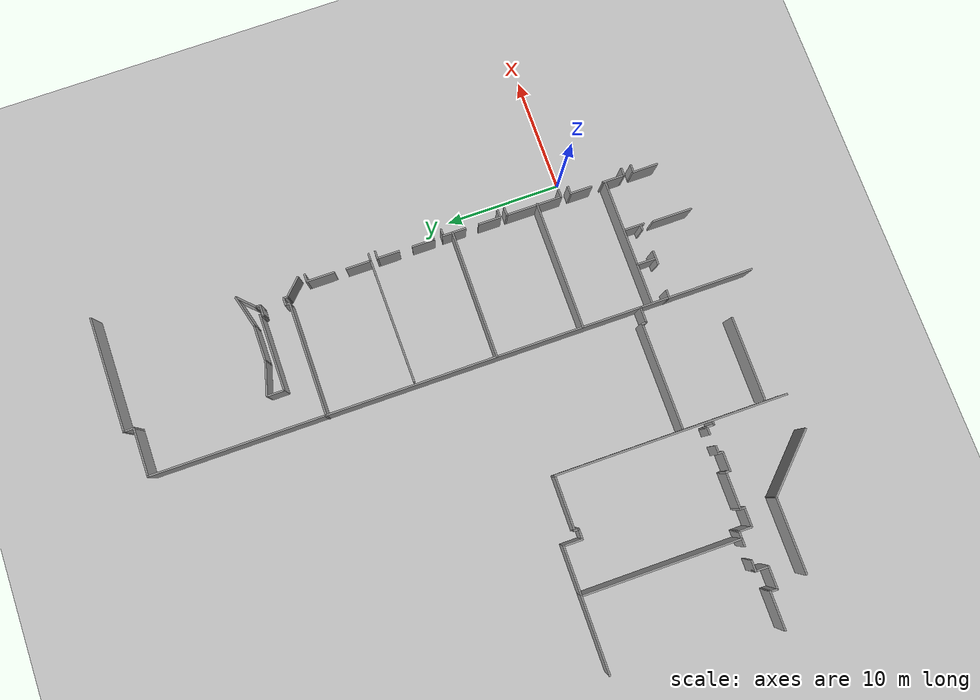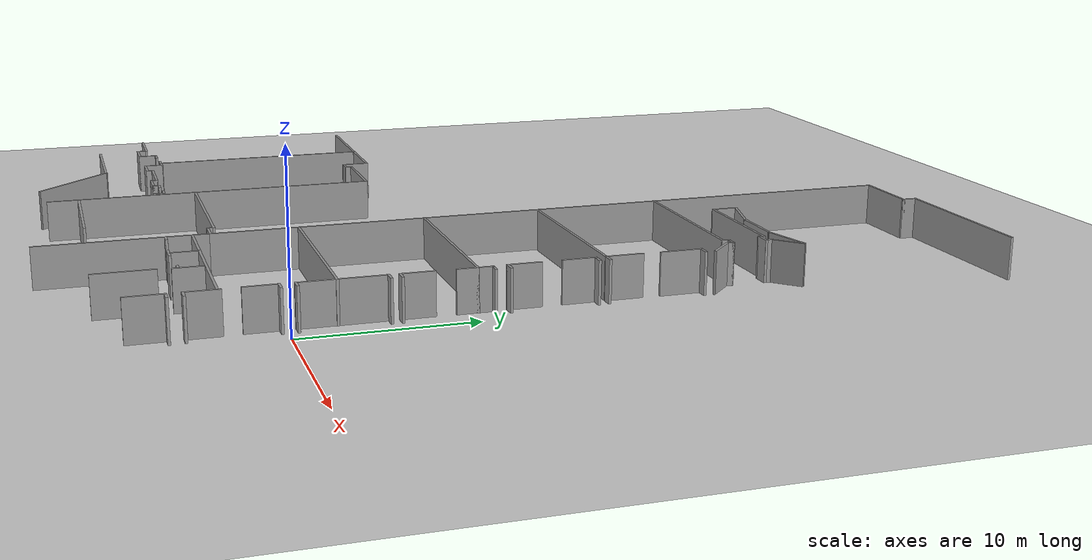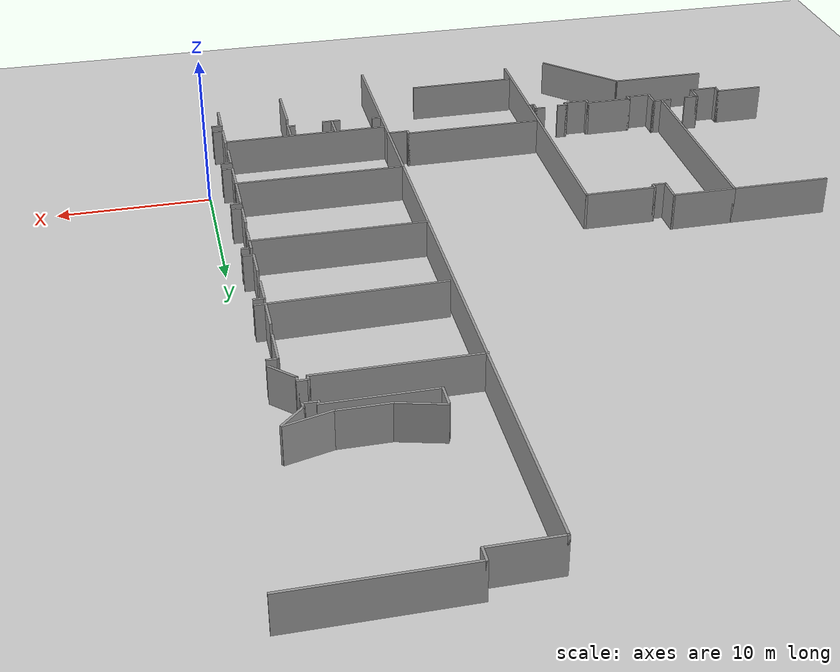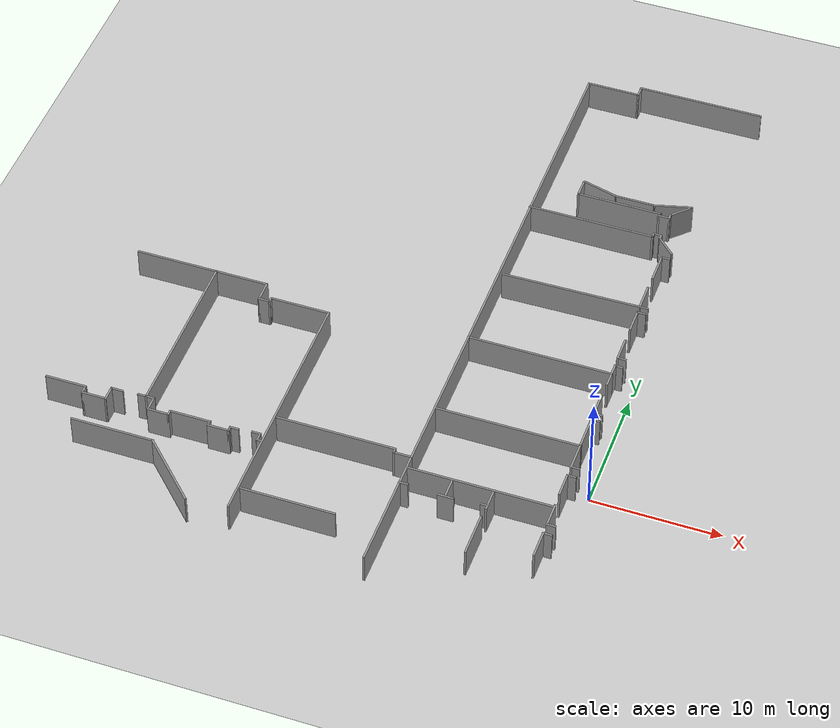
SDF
<sdf version="1.6">
 <world name="default">
  <model name="ground_plane">
   <static>1</static>
   <link name="link">
    <collision name="collision">
     <geometry><plane><normal>0 0 1</normal><size>200 100</size></plane></geometry>
     <surface><friction><ode><mu>100</mu><mu2>50</mu2></ode></friction></surface>
    </collision>
    <visual name="visual">
     <cast_shadows>0</cast_shadows>
     <geometry><plane><normal>0 0 1</normal><size>200 100</size></plane></geometry>
     <material>
      <script><uri>file://media/materials/scripts/gazebo.material</uri><name>Gazebo/Grey</name></script>
     </material>
    </visual>
   </link>
  </model>
  <model name="LuterFloorPlan">
   <pose>-8.27259 7.62647 0 0 -0 0</pose>
   <link name="Wall_277">
    <collision name="Wall_277_Collision">
     <geometry><box><size>6.5 0.15 2.5</size></box></geometry>
     <pose>0 0 1.25 0 -0 0</pose>
    </collision>
    <visual name="Wall_277_Visual">
     <pose>0 0 1.25 0 -0 0</pose>
     <geometry><box><size>6.5 0.15 2.5</size></box></geometry>
     <material>
      <script><uri>file://media/materials/scripts/gazebo.material</uri><name>Gazebo/Grey</name></script>
      <ambient>1 1 1 1</ambient>
     </material>
    </visual>
    <pose>-27.7555 2.64119 0 0 -0 0</pose>
   </link>
   <link name="Wall_279">
    <collision name="Wall_279_Collision">
     <geometry><box><size>13.75 0.15 2.5</size></box></geometry>
     <pose>0 0 1.25 0 -0 0</pose>
    </collision>
    <visual name="Wall_279_Visual">
     <pose>0 0 1.25 0 -0 0</pose>
     <geometry><box><size>13.75 0.15 2.5</size></box></geometry>
     <material>
      <script><uri>file://media/materials/scripts/gazebo.material</uri><name>Gazebo/Grey</name></script>
      <ambient>1 1 1 1</ambient>
     </material>
    </visual>
    <pose>-24.5805 -4.15881 0 0 0 -1.5708</pose>
   </link>
   <link name="Wall_280">
    <collision name="Wall_280_Collision">
     <geometry><box><size>0.75 0.15 2.5</size></box></geometry>
     <pose>0 0 1.25 0 -0 0</pose>
    </collision>
    <visual name="Wall_280_Visual">
     <pose>0 0 1.25 0 -0 0</pose>
     <geometry><box><size>0.75 0.15 2.5</size></box></geometry>
     <material>
      <script><uri>file://media/materials/scripts/gazebo.material</uri><name>Gazebo/Grey</name></script>
      <ambient>1 1 1 1</ambient>
     </material>
    </visual>
    <pose>-24.8805 -10.9588 0 0 -0 3.14159</pose>
   </link>
   <link name="Wall_286">
    <collision name="Wall_286_Collision">
     <geometry><box><size>3.25 0.15 2.5</size></box></geometry>
     <pose>0 0 1.25 0 -0 0</pose>
    </collision>
    <visual name="Wall_286_Visual">
     <pose>0 0 1.25 0 -0 0</pose>
     <geometry><box><size>3.25 0.15 2.5</size></box></geometry>
     <material>
      <script><uri>file://media/materials/scripts/gazebo.material</uri><name>Gazebo/Grey</name></script>
      <ambient>1 1 1 1</ambient>
     </material>
    </visual>
    <pose>-30.6866 -11.5558 0 0 -0 0</pose>
   </link>
   <link name="Wall_287">
    <collision name="Wall_287_Collision">
     <geometry><box><size>0.75 0.15 2.5</size></box></geometry>
     <pose>0 0 1.25 0 -0 0</pose>
    </collision>
    <visual name="Wall_287_Visual">
     <pose>0 0 1.25 0 -0 0</pose>
     <geometry><box><size>0.75 0.15 2.5</size></box></geometry>
     <material>
      <script><uri>file://media/materials/scripts/gazebo.material</uri><name>Gazebo/Grey</name></script>
      <ambient>1 1 1 1</ambient>
     </material>
    </visual>
    <pose>-29.1366 -11.8558 0 0 0 -1.5708</pose>
   </link>
   <link name="Wall_288">
    <collision name="Wall_288_Collision">
     <geometry><box><size>2 0.15 2.5</size></box></geometry>
     <pose>0 0 1.25 0 -0 0</pose>
    </collision>
    <visual name="Wall_288_Visual">
     <pose>0 0 1.25 0 -0 0</pose>
     <geometry><box><size>2 0.15 2.5</size></box></geometry>
     <material>
      <script><uri>file://media/materials/scripts/gazebo.material</uri><name>Gazebo/Grey</name></script>
      <ambient>1 1 1 1</ambient>
     </material>
    </visual>
    <pose>-28.2116 -12.1558 0 0 -0 0</pose>
   </link>
   <link name="Wall_290">
    <collision name="Wall_290_Collision">
     <geometry><box><size>1.25 0.15 2.5</size></box></geometry>
     <pose>0 0 1.25 0 -0 0</pose>
    </collision>
    <visual name="Wall_290_Visual">
     <pose>0 0 1.25 0 -0 0</pose>
     <geometry><box><size>1.25 0.15 2.5</size></box></geometry>
     <material>
      <script><uri>file://media/materials/scripts/gazebo.material</uri><name>Gazebo/Grey</name></script>
      <ambient>1 1 1 1</ambient>
     </material>
    </visual>
    <pose>-27.2866 -11.6058 0 0 -0 1.5708</pose>
   </link>
   <link name="Wall_291">
    <collision name="Wall_291_Collision">
     <geometry><box><size>1 0.15 2.5</size></box></geometry>
     <pose>0 0 1.25 0 -0 0</pose>
    </collision>
    <visual name="Wall_291_Visual">
     <pose>0 0 1.25 0 -0 0</pose>
     <geometry><box><size>1 0.15 2.5</size></box></geometry>
     <material>
      <script><uri>file://media/materials/scripts/gazebo.material</uri><name>Gazebo/Grey</name></script>
      <ambient>1 1 1 1</ambient>
     </material>
    </visual>
    <pose>-26.8616 -11.0558 0 0 -0 0</pose>
   </link>
   <link name="Wall_293">
    <collision name="Wall_293_Collision">
     <geometry><box><size>6.5 0.15 2.5</size></box></geometry>
     <pose>0 0 1.25 0 -0 0</pose>
    </collision>
    <visual name="Wall_293_Visual">
     <pose>0 0 1.25 0 -0 0</pose>
     <geometry><box><size>6.5 0.15 2.5</size></box></geometry>
     <material>
      <script><uri>file://media/materials/scripts/gazebo.material</uri><name>Gazebo/Grey</name></script>
      <ambient>1 1 1 1</ambient>
     </material>
    </visual>
    <pose>-25.6414 -14.7777 0 0 -0 0</pose>
   </link>
   <link name="Wall_294">
    <collision name="Wall_294_Collision">
     <geometry><box><size>6.25 0.15 2.5</size></box></geometry>
     <pose>0 0 1.25 0 -0 0</pose>
    </collision>
    <visual name="Wall_294_Visual">
     <pose>0 0 1.25 0 -0 0</pose>
     <geometry><box><size>6.25 0.15 2.5</size></box></geometry>
     <material>
      <script><uri>file://media/materials/scripts/gazebo.material</uri><name>Gazebo/Grey</name></script>
      <ambient>1 1 1 1</ambient>
     </material>
    </visual>
    <pose>-20.3098 -16.9344 0 0 0 -0.785398</pose>
   </link>
   <link name="Wall_299">
    <collision name="Wall_299_Collision">
     <geometry><box><size>4.25 0.15 2.5</size></box></geometry>
     <pose>0 0 1.25 0 -0 0</pose>
    </collision>
    <visual name="Wall_299_Visual">
     <pose>0 0 1.25 0 -0 0</pose>
     <geometry><box><size>4.25 0.15 2.5</size></box></geometry>
     <material>
      <script><uri>file://media/materials/scripts/gazebo.material</uri><name>Gazebo/Grey</name></script>
      <ambient>1 1 1 1</ambient>
     </material>
    </visual>
    <pose>-22.5305 2.64119 0 0 -0 0</pose>
   </link>
   <link name="Wall_300">
    <collision name="Wall_300_Collision">
     <geometry><box><size>1.75 0.15 2.5</size></box></geometry>
     <pose>0 0 1.25 0 -0 0</pose>
    </collision>
    <visual name="Wall_300_Visual">
     <pose>0 0 1.25 0 -0 0</pose>
     <geometry><box><size>1.75 0.15 2.5</size></box></geometry>
     <material>
      <script><uri>file://media/materials/scripts/gazebo.material</uri><name>Gazebo/Grey</name></script>
      <ambient>1 1 1 1</ambient>
     </material>
    </visual>
    <pose>-20.4805 1.84119 0 0 0 -1.5708</pose>
   </link>
   <link name="Wall_301">
    <collision name="Wall_301_Collision">
     <geometry><box><size>1 0.15 2.5</size></box></geometry>
     <pose>0 0 1.25 0 -0 0</pose>
    </collision>
    <visual name="Wall_301_Visual">
     <pose>0 0 1.25 0 -0 0</pose>
     <geometry><box><size>1 0.15 2.5</size></box></geometry>
     <material>
      <script><uri>file://media/materials/scripts/gazebo.material</uri><name>Gazebo/Grey</name></script>
      <ambient>1 1 1 1</ambient>
     </material>
    </visual>
    <pose>-20.0555 1.04119 0 0 -0 0</pose>
   </link>
   <link name="Wall_304">
    <collision name="Wall_304_Collision">
     <geometry><box><size>0.5 0.15 2.5</size></box></geometry>
     <pose>0 0 1.25 0 -0 0</pose>
    </collision>
    <visual name="Wall_304_Visual">
     <pose>0 0 1.25 0 -0 0</pose>
     <geometry><box><size>0.5 0.15 2.5</size></box></geometry>
     <material>
      <script><uri>file://media/materials/scripts/gazebo.material</uri><name>Gazebo/Grey</name></script>
      <ambient>1 1 1 1</ambient>
     </material>
    </visual>
    <pose>-19.6305 1.21619 0 0 -0 1.5708</pose>
   </link>
   <link name="Wall_305">
    <collision name="Wall_305_Collision">
     <geometry><box><size>4.75 0.15 2.5</size></box></geometry>
     <pose>0 0 1.25 0 -0 0</pose>
    </collision>
    <visual name="Wall_305_Visual">
     <pose>0 0 1.25 0 -0 0</pose>
     <geometry><box><size>4.75 0.15 2.5</size></box></geometry>
     <material>
      <script><uri>file://media/materials/scripts/gazebo.material</uri><name>Gazebo/Grey</name></script>
      <ambient>1 1 1 1</ambient>
     </material>
    </visual>
    <pose>-17.3305 1.39119 0 0 -0 0</pose>
   </link>
   <link name="Wall_307">
    <collision name="Wall_307_Collision">
     <geometry><box><size>0.75 0.15 2.5</size></box></geometry>
     <pose>0 0 1.25 0 -0 0</pose>
    </collision>
    <visual name="Wall_307_Visual">
     <pose>0 0 1.25 0 -0 0</pose>
     <geometry><box><size>0.75 0.15 2.5</size></box></geometry>
     <material>
      <script><uri>file://media/materials/scripts/gazebo.material</uri><name>Gazebo/Grey</name></script>
      <ambient>1 1 1 1</ambient>
     </material>
    </visual>
    <pose>-24.2805 -10.9588 0 0 -0 0</pose>
   </link>
   <link name="Wall_308">
    <collision name="Wall_308_Collision">
     <geometry><box><size>1.25 0.15 2.5</size></box></geometry>
     <pose>0 0 1.25 0 -0 0</pose>
    </collision>
    <visual name="Wall_308_Visual">
     <pose>0 0 1.25 0 -0 0</pose>
     <geometry><box><size>1.25 0.15 2.5</size></box></geometry>
     <material>
      <script><uri>file://media/materials/scripts/gazebo.material</uri><name>Gazebo/Grey</name></script>
      <ambient>1 1 1 1</ambient>
     </material>
    </visual>
    <pose>-23.9805 -11.5088 0 0 0 -1.5708</pose>
   </link>
   <link name="Wall_309">
    <collision name="Wall_309_Collision">
     <geometry><box><size>1.75 0.15 2.5</size></box></geometry>
     <pose>0 0 1.25 0 -0 0</pose>
    </collision>
    <visual name="Wall_309_Visual">
     <pose>0 0 1.25 0 -0 0</pose>
     <geometry><box><size>1.75 0.15 2.5</size></box></geometry>
     <material>
      <script><uri>file://media/materials/scripts/gazebo.material</uri><name>Gazebo/Grey</name></script>
      <ambient>1 1 1 1</ambient>
     </material>
    </visual>
    <pose>-23.1805 -12.0588 0 0 -0 0</pose>
   </link>
   <link name="Wall_310">
    <collision name="Wall_310_Collision">
     <geometry><box><size>0.5 0.15 2.5</size></box></geometry>
     <pose>0 0 1.25 0 -0 0</pose>
    </collision>
    <visual name="Wall_310_Visual">
     <pose>0 0 1.25 0 -0 0</pose>
     <geometry><box><size>0.5 0.15 2.5</size></box></geometry>
     <material>
      <script><uri>file://media/materials/scripts/gazebo.material</uri><name>Gazebo/Grey</name></script>
      <ambient>1 1 1 1</ambient>
     </material>
    </visual>
    <pose>-22.3805 -11.8838 0 0 -0 1.5708</pose>
   </link>
   <link name="Wall_311">
    <collision name="Wall_311_Collision">
     <geometry><box><size>3.25 0.15 2.5</size></box></geometry>
     <pose>0 0 1.25 0 -0 0</pose>
    </collision>
    <visual name="Wall_311_Visual">
     <pose>0 0 1.25 0 -0 0</pose>
     <geometry><box><size>3.25 0.15 2.5</size></box></geometry>
     <material>
      <script><uri>file://media/materials/scripts/gazebo.material</uri><name>Gazebo/Grey</name></script>
      <ambient>1 1 1 1</ambient>
     </material>
    </visual>
    <pose>-20.8305 -11.7088 0 0 -0 0</pose>
   </link>
   <link name="Wall_312">
    <collision name="Wall_312_Collision">
     <geometry><box><size>0.5 0.15 2.5</size></box></geometry>
     <pose>0 0 1.25 0 -0 0</pose>
    </collision>
    <visual name="Wall_312_Visual">
     <pose>0 0 1.25 0 -0 0</pose>
     <geometry><box><size>0.5 0.15 2.5</size></box></geometry>
     <material>
      <script><uri>file://media/materials/scripts/gazebo.material</uri><name>Gazebo/Grey</name></script>
      <ambient>1 1 1 1</ambient>
     </material>
    </visual>
    <pose>-19.2805 -11.8838 0 0 0 -1.5708</pose>
   </link>
   <link name="Wall_313">
    <collision name="Wall_313_Collision">
     <geometry><box><size>1.75 0.15 2.5</size></box></geometry>
     <pose>0 0 1.25 0 -0 0</pose>
    </collision>
    <visual name="Wall_313_Visual">
     <pose>0 0 1.25 0 -0 0</pose>
     <geometry><box><size>1.75 0.15 2.5</size></box></geometry>
     <material>
      <script><uri>file://media/materials/scripts/gazebo.material</uri><name>Gazebo/Grey</name></script>
      <ambient>1 1 1 1</ambient>
     </material>
    </visual>
    <pose>-18.4805 -12.0588 0 0 -0 0</pose>
   </link>
   <link name="Wall_314">
    <collision name="Wall_314_Collision">
     <geometry><box><size>0.5 0.15 2.5</size></box></geometry>
     <pose>0 0 1.25 0 -0 0</pose>
    </collision>
    <visual name="Wall_314_Visual">
     <pose>0 0 1.25 0 -0 0</pose>
     <geometry><box><size>0.5 0.15 2.5</size></box></geometry>
     <material>
      <script><uri>file://media/materials/scripts/gazebo.material</uri><name>Gazebo/Grey</name></script>
      <ambient>1 1 1 1</ambient>
     </material>
    </visual>
    <pose>-17.6805 -11.8838 0 0 -0 1.5708</pose>
   </link>
   <link name="Wall_315">
    <collision name="Wall_315_Collision">
     <geometry><box><size>0.75 0.15 2.5</size></box></geometry>
     <pose>0 0 1.25 0 -0 0</pose>
    </collision>
    <visual name="Wall_315_Visual">
     <pose>0 0 1.25 0 -0 0</pose>
     <geometry><box><size>0.75 0.15 2.5</size></box></geometry>
     <material>
      <script><uri>file://media/materials/scripts/gazebo.material</uri><name>Gazebo/Grey</name></script>
      <ambient>1 1 1 1</ambient>
     </material>
    </visual>
    <pose>-17.3805 -11.7088 0 0 -0 0</pose>
   </link>
   <link name="Wall_317">
    <collision name="Wall_317_Collision">
     <geometry><box><size>20.25 0.15 2.5</size></box></geometry>
     <pose>0 0 1.25 0 -0 0</pose>
    </collision>
    <visual name="Wall_317_Visual">
     <pose>0 0 1.25 0 -0 0</pose>
     <geometry><box><size>20.25 0.15 2.5</size></box></geometry>
     <material>
      <script><uri>file://media/materials/scripts/gazebo.material</uri><name>Gazebo/Grey</name></script>
      <ambient>1 1 1 1</ambient>
     </material>
    </visual>
    <pose>-15.0305 -8.65881 0 0 0 -1.5708</pose>
   </link>
   <link name="Wall_319">
    <collision name="Wall_319_Collision">
     <geometry><box><size>0.75 0.15 2.5</size></box></geometry>
     <pose>0 0 1.25 0 -0 0</pose>
    </collision>
    <visual name="Wall_319_Visual">
     <pose>0 0 1.25 0 -0 0</pose>
     <geometry><box><size>0.75 0.15 2.5</size></box></geometry>
     <material>
      <script><uri>file://media/materials/scripts/gazebo.material</uri><name>Gazebo/Grey</name></script>
      <ambient>1 1 1 1</ambient>
     </material>
    </visual>
    <pose>-15.6923 -11.5968 0 0 -0 0</pose>
   </link>
   <link name="Wall_320">
    <collision name="Wall_320_Collision">
     <geometry><box><size>0.75 0.15 2.5</size></box></geometry>
     <pose>0 0 1.25 0 -0 0</pose>
    </collision>
    <visual name="Wall_320_Visual">
     <pose>0 0 1.25 0 -0 0</pose>
     <geometry><box><size>0.75 0.15 2.5</size></box></geometry>
     <material>
      <script><uri>file://media/materials/scripts/gazebo.material</uri><name>Gazebo/Grey</name></script>
      <ambient>1 1 1 1</ambient>
     </material>
    </visual>
    <pose>-15.3923 -11.8968 0 0 0 -1.5708</pose>
   </link>
   <link name="Wall_321">
    <collision name="Wall_321_Collision">
     <geometry><box><size>0.5 0.15 2.5</size></box></geometry>
     <pose>0 0 1.25 0 -0 0</pose>
    </collision>
    <visual name="Wall_321_Visual">
     <pose>0 0 1.25 0 -0 0</pose>
     <geometry><box><size>0.5 0.15 2.5</size></box></geometry>
     <material>
      <script><uri>file://media/materials/scripts/gazebo.material</uri><name>Gazebo/Grey</name></script>
      <ambient>1 1 1 1</ambient>
     </material>
    </visual>
    <pose>-15.2173 -12.1968 0 0 -0 0</pose>
   </link>
   <link name="Wall_611">
    <collision name="Wall_611_Collision">
     <geometry><box><size>9.25 0.15 2.5</size></box></geometry>
     <pose>0 0 1.25 0 -0 0</pose>
    </collision>
    <visual name="Wall_611_Visual">
     <pose>0 0 1.25 0 -0 0</pose>
     <geometry><box><size>9.25 0.15 2.5</size></box></geometry>
     <material>
      <script><uri>file://media/materials/scripts/gazebo.material</uri><name>Gazebo/Grey</name></script>
      <ambient>1 1 1 1</ambient>
     </material>
    </visual>
    <pose>-10.2794 -9.67914 0 0 -0 0</pose>
   </link>
   <link name="Wall_613">
    <collision name="Wall_613_Collision">
     <geometry><box><size>0.5 0.15 2.5</size></box></geometry>
     <pose>0 0 1.25 0 -0 0</pose>
    </collision>
    <visual name="Wall_613_Visual">
     <pose>0 0 1.25 0 -0 0</pose>
     <geometry><box><size>0.5 0.15 2.5</size></box></geometry>
     <material>
      <script><uri>file://media/materials/scripts/gazebo.material</uri><name>Gazebo/Grey</name></script>
      <ambient>1 1 1 1</ambient>
     </material>
    </visual>
    <pose>-5.72942 -9.85414 0 0 0 -1.5708</pose>
   </link>
   <link name="Wall_614">
    <collision name="Wall_614_Collision">
     <geometry><box><size>1.5 0.15 2.5</size></box></geometry>
     <pose>0 0 1.25 0 -0 0</pose>
    </collision>
    <visual name="Wall_614_Visual">
     <pose>0 0 1.25 0 -0 0</pose>
     <geometry><box><size>1.5 0.15 2.5</size></box></geometry>
     <material>
      <script><uri>file://media/materials/scripts/gazebo.material</uri><name>Gazebo/Grey</name></script>
      <ambient>1 1 1 1</ambient>
     </material>
    </visual>
    <pose>-5.05442 -10.0291 0 0 -0 0</pose>
   </link>
   <link name="Wall_616">
    <collision name="Wall_616_Collision">
     <geometry><box><size>10 0.15 2.5</size></box></geometry>
     <pose>0 0 1.25 0 -0 0</pose>
    </collision>
    <visual name="Wall_616_Visual">
     <pose>0 0 1.25 0 -0 0</pose>
     <geometry><box><size>10 0.15 2.5</size></box></geometry>
     <material>
      <script><uri>file://media/materials/scripts/gazebo.material</uri><name>Gazebo/Grey</name></script>
      <ambient>1 1 1 1</ambient>
     </material>
    </visual>
    <pose>-4.37942 -14.9541 0 0 0 -1.5708</pose>
   </link>
   <link name="Wall_619">
    <collision name="Wall_619_Collision">
     <geometry><box><size>7.25 0.15 2.5</size></box></geometry>
     <pose>0 0 1.25 0 -0 0</pose>
    </collision>
    <visual name="Wall_619_Visual">
     <pose>0 0 1.25 0 -0 0</pose>
     <geometry><box><size>7.25 0.15 2.5</size></box></geometry>
     <material>
      <script><uri>file://media/materials/scripts/gazebo.material</uri><name>Gazebo/Grey</name></script>
      <ambient>1 1 1 1</ambient>
     </material>
    </visual>
    <pose>-11.2441 -16.8597 0 0 -0 0</pose>
   </link>
   <link name="Wall_630">
    <collision name="Wall_630_Collision">
     <geometry><box><size>42.5 0.15 2.5</size></box></geometry>
     <pose>0 0 1.25 0 -0 0</pose>
    </collision>
    <visual name="Wall_630_Visual">
     <pose>0 0 1.25 0 -0 0</pose>
     <geometry><box><size>42.5 0.15 2.5</size></box></geometry>
     <material>
      <script><uri>file://media/materials/scripts/gazebo.material</uri><name>Gazebo/Grey</name></script>
      <ambient>1 1 1 1</ambient>
     </material>
    </visual>
    <pose>-4.37942 11.1459 0 0 -0 1.5708</pose>
   </link>
   <link name="Wall_631">
    <collision name="Wall_631_Collision">
     <geometry><box><size>4.25 0.15 2.5</size></box></geometry>
     <pose>0 0 1.25 0 -0 0</pose>
    </collision>
    <visual name="Wall_631_Visual">
     <pose>0 0 1.25 0 -0 0</pose>
     <geometry><box><size>4.25 0.15 2.5</size></box></geometry>
     <material>
      <script><uri>file://media/materials/scripts/gazebo.material</uri><name>Gazebo/Grey</name></script>
      <ambient>1 1 1 1</ambient>
     </material>
    </visual>
    <pose>-2.32942 32.3209 0 0 -0 0</pose>
   </link>
   <link name="Wall_632">
    <collision name="Wall_632_Collision">
     <geometry><box><size>1 0.15 2.5</size></box></geometry>
     <pose>0 0 1.25 0 -0 0</pose>
    </collision>
    <visual name="Wall_632_Visual">
     <pose>0 0 1.25 0 -0 0</pose>
     <geometry><box><size>1 0.15 2.5</size></box></geometry>
     <material>
      <script><uri>file://media/materials/scripts/gazebo.material</uri><name>Gazebo/Grey</name></script>
      <ambient>1 1 1 1</ambient>
     </material>
    </visual>
    <pose>-0.279416 32.7459 0 0 -0 1.5708</pose>
   </link>
   <link name="Wall_633">
    <collision name="Wall_633_Collision">
     <geometry><box><size>10 0.15 2.5</size></box></geometry>
     <pose>0 0 1.25 0 -0 0</pose>
    </collision>
    <visual name="Wall_633_Visual">
     <pose>0 0 1.25 0 -0 0</pose>
     <geometry><box><size>10 0.15 2.5</size></box></geometry>
     <material>
      <script><uri>file://media/materials/scripts/gazebo.material</uri><name>Gazebo/Grey</name></script>
      <ambient>1 1 1 1</ambient>
     </material>
    </visual>
    <pose>4.64558 33.1709 0 0 -0 0</pose>
   </link>
   <link name="Wall_645">
    <collision name="Wall_645_Collision">
     <geometry><box><size>2 0.15 2.5</size></box></geometry>
     <pose>0 0 1.25 0 -0 0</pose>
    </collision>
    <visual name="Wall_645_Visual">
     <pose>0 0 1.25 0 -0 0</pose>
     <geometry><box><size>2 0.15 2.5</size></box></geometry>
     <material>
      <script><uri>file://media/materials/scripts/gazebo.material</uri><name>Gazebo/Grey</name></script>
      <ambient>1 1 1 1</ambient>
     </material>
    </visual>
    <pose>6.71868 20.6473 0 0 0 -2.35619</pose>
   </link>
   <link name="Wall_646">
    <collision name="Wall_646_Collision">
     <geometry><box><size>0.5 0.15 2.5</size></box></geometry>
     <pose>0 0 1.25 0 -0 0</pose>
    </collision>
    <visual name="Wall_646_Visual">
     <pose>0 0 1.25 0 -0 0</pose>
     <geometry><box><size>0.5 0.15 2.5</size></box></geometry>
     <material>
      <script><uri>file://media/materials/scripts/gazebo.material</uri><name>Gazebo/Grey</name></script>
      <ambient>1 1 1 1</ambient>
     </material>
    </visual>
    <pose>6.0646 19.8182 0 0 0 -1.5708</pose>
   </link>
   <link name="Wall_647">
    <collision name="Wall_647_Collision">
     <geometry><box><size>1 0.15 2.5</size></box></geometry>
     <pose>0 0 1.25 0 -0 0</pose>
    </collision>
    <visual name="Wall_647_Visual">
     <pose>0 0 1.25 0 -0 0</pose>
     <geometry><box><size>1 0.15 2.5</size></box></geometry>
     <material>
      <script><uri>file://media/materials/scripts/gazebo.material</uri><name>Gazebo/Grey</name></script>
      <ambient>1 1 1 1</ambient>
     </material>
    </visual>
    <pose>5.6396 19.6432 0 0 -0 3.14159</pose>
   </link>
   <link name="Wall_648">
    <collision name="Wall_648_Collision">
     <geometry><box><size>0.25 0.15 2.5</size></box></geometry>
     <pose>0 0 1.25 0 -0 0</pose>
    </collision>
    <visual name="Wall_648_Visual">
     <pose>0 0 1.25 0 -0 0</pose>
     <geometry><box><size>0.25 0.15 2.5</size></box></geometry>
     <material>
      <script><uri>file://media/materials/scripts/gazebo.material</uri><name>Gazebo/Grey</name></script>
      <ambient>1 1 1 1</ambient>
     </material>
    </visual>
    <pose>5.2146 19.6932 0 0 -0 1.5708</pose>
   </link>
   <link name="Wall_650">
    <collision name="Wall_650_Collision">
     <geometry><box><size>3 0.15 2.5</size></box></geometry>
     <pose>0 0 1.25 0 -0 0</pose>
    </collision>
    <visual name="Wall_650_Visual">
     <pose>0 0 1.25 0 -0 0</pose>
     <geometry><box><size>3 0.15 2.5</size></box></geometry>
     <material>
      <script><uri>file://media/materials/scripts/gazebo.material</uri><name>Gazebo/Grey</name></script>
      <ambient>1 1 1 1</ambient>
     </material>
    </visual>
    <pose>0.099011 20.9769 0 0 0 -0.261799</pose>
   </link>
   <link name="Wall_651">
    <collision name="Wall_651_Collision">
     <geometry><box><size>3.2237 0.15 2.5</size></box></geometry>
     <pose>0 0 1.25 0 -0 0</pose>
    </collision>
    <visual name="Wall_651_Visual">
     <pose>0 0 1.25 0 -0 0</pose>
     <geometry><box><size>3.2237 0.15 2.5</size></box></geometry>
     <material>
      <script><uri>file://media/materials/scripts/gazebo.material</uri><name>Gazebo/Grey</name></script>
      <ambient>1 1 1 1</ambient>
     </material>
    </visual>
    <pose>3.03861 20.6081 0 0 -0 0</pose>
   </link>
   <link name="Wall_652">
    <collision name="Wall_652_Collision">
     <geometry><box><size>3 0.15 2.5</size></box></geometry>
     <pose>0 0 1.25 0 -0 0</pose>
    </collision>
    <visual name="Wall_652_Visual">
     <pose>0 0 1.25 0 -0 0</pose>
     <geometry><box><size>3 0.15 2.5</size></box></geometry>
     <material>
      <script><uri>file://media/materials/scripts/gazebo.material</uri><name>Gazebo/Grey</name></script>
      <ambient>1 1 1 1</ambient>
     </material>
    </visual>
    <pose>5.9519 20.9769 0 0 -0 0.261799</pose>
   </link>
   <link name="Wall_654">
    <collision name="Wall_654_Collision">
     <geometry><box><size>1.5 0.15 2.5</size></box></geometry>
     <pose>0 0 1.25 0 -0 0</pose>
    </collision>
    <visual name="Wall_654_Visual">
     <pose>0 0 1.25 0 -0 0</pose>
     <geometry><box><size>1.5 0.15 2.5</size></box></geometry>
     <material>
      <script><uri>file://media/materials/scripts/gazebo.material</uri><name>Gazebo/Grey</name></script>
      <ambient>1 1 1 1</ambient>
     </material>
    </visual>
    <pose>-1.32526 20.5534 0 0 0 -1.5708</pose>
   </link>
   <link name="Wall_655">
    <collision name="Wall_655_Collision">
     <geometry><box><size>6.75 0.15 2.5</size></box></geometry>
     <pose>0 0 1.25 0 -0 0</pose>
    </collision>
    <visual name="Wall_655_Visual">
     <pose>0 0 1.25 0 -0 0</pose>
     <geometry><box><size>6.75 0.15 2.5</size></box></geometry>
     <material>
      <script><uri>file://media/materials/scripts/gazebo.material</uri><name>Gazebo/Grey</name></script>
      <ambient>1 1 1 1</ambient>
     </material>
    </visual>
    <pose>1.97474 19.8784 0 0 -0 0</pose>
   </link>
   <link name="Wall_671">
    <collision name="Wall_671_Collision">
     <geometry><box><size>10 0.15 2.5</size></box></geometry>
     <pose>0 0 1.25 0 -0 0</pose>
    </collision>
    <visual name="Wall_671_Visual">
     <pose>0 0 1.25 0 -0 0</pose>
     <geometry><box><size>10 0.15 2.5</size></box></geometry>
     <material>
      <script><uri>file://media/materials/scripts/gazebo.material</uri><name>Gazebo/Grey</name></script>
      <ambient>1 1 1 1</ambient>
     </material>
    </visual>
    <pose>0.497622 17.2745 0 0 -0 0</pose>
   </link>
   <link name="Wall_674">
    <collision name="Wall_674_Collision">
     <geometry><box><size>0.5 0.15 2.5</size></box></geometry>
     <pose>0 0 1.25 0 -0 0</pose>
    </collision>
    <visual name="Wall_674_Visual">
     <pose>0 0 1.25 0 -0 0</pose>
     <geometry><box><size>0.5 0.15 2.5</size></box></geometry>
     <material>
      <script><uri>file://media/materials/scripts/gazebo.material</uri><name>Gazebo/Grey</name></script>
      <ambient>1 1 1 1</ambient>
     </material>
    </visual>
    <pose>5.42262 17.4495 0 0 -0 1.5708</pose>
   </link>
   <link name="Wall_675">
    <collision name="Wall_675_Collision">
     <geometry><box><size>0.75 0.15 2.5</size></box></geometry>
     <pose>0 0 1.25 0 -0 0</pose>
    </collision>
    <visual name="Wall_675_Visual">
     <pose>0 0 1.25 0 -0 0</pose>
     <geometry><box><size>0.75 0.15 2.5</size></box></geometry>
     <material>
      <script><uri>file://media/materials/scripts/gazebo.material</uri><name>Gazebo/Grey</name></script>
      <ambient>1 1 1 1</ambient>
     </material>
    </visual>
    <pose>5.72262 17.6245 0 0 -0 0</pose>
   </link>
   <link name="Wall_676">
    <collision name="Wall_676_Collision">
     <geometry><box><size>0.5 0.15 2.5</size></box></geometry>
     <pose>0 0 1.25 0 -0 0</pose>
    </collision>
    <visual name="Wall_676_Visual">
     <pose>0 0 1.25 0 -0 0</pose>
     <geometry><box><size>0.5 0.15 2.5</size></box></geometry>
     <material>
      <script><uri>file://media/materials/scripts/gazebo.material</uri><name>Gazebo/Grey</name></script>
      <ambient>1 1 1 1</ambient>
     </material>
    </visual>
    <pose>6.02262 17.4495 0 0 0 -1.5708</pose>
   </link>
   <link name="Wall_677">
    <collision name="Wall_677_Collision">
     <geometry><box><size>2 0.15 2.5</size></box></geometry>
     <pose>0 0 1.25 0 -0 0</pose>
    </collision>
    <visual name="Wall_677_Visual">
     <pose>0 0 1.25 0 -0 0</pose>
     <geometry><box><size>2 0.15 2.5</size></box></geometry>
     <material>
      <script><uri>file://media/materials/scripts/gazebo.material</uri><name>Gazebo/Grey</name></script>
      <ambient>1 1 1 1</ambient>
     </material>
    </visual>
    <pose>6.67669 16.6204 0 0 0 -0.785398</pose>
   </link>
   <link name="Wall_679">
    <collision name="Wall_679_Collision">
     <geometry><box><size>0.75 0.15 2.5</size></box></geometry>
     <pose>0 0 1.25 0 -0 0</pose>
    </collision>
    <visual name="Wall_679_Visual">
     <pose>0 0 1.25 0 -0 0</pose>
     <geometry><box><size>0.75 0.15 2.5</size></box></geometry>
     <material>
      <script><uri>file://media/materials/scripts/gazebo.material</uri><name>Gazebo/Grey</name></script>
      <ambient>1 1 1 1</ambient>
     </material>
    </visual>
    <pose>7.03077 15.3663 0 0 -0 3.14159</pose>
   </link>
   <link name="Wall_680">
    <collision name="Wall_680_Collision">
     <geometry><box><size>2.5 0.15 2.5</size></box></geometry>
     <pose>0 0 1.25 0 -0 0</pose>
    </collision>
    <visual name="Wall_680_Visual">
     <pose>0 0 1.25 0 -0 0</pose>
     <geometry><box><size>2.5 0.15 2.5</size></box></geometry>
     <material>
      <script><uri>file://media/materials/scripts/gazebo.material</uri><name>Gazebo/Grey</name></script>
      <ambient>1 1 1 1</ambient>
     </material>
    </visual>
    <pose>6.73077 14.1913 0 0 0 -1.5708</pose>
   </link>
   <link name="Wall_695">
    <collision name="Wall_695_Collision">
     <geometry><box><size>2.25 0.15 2.5</size></box></geometry>
     <pose>0 0 1.25 0 -0 0</pose>
    </collision>
    <visual name="Wall_695_Visual">
     <pose>0 0 1.25 0 -0 0</pose>
     <geometry><box><size>2.25 0.15 2.5</size></box></geometry>
     <material>
      <script><uri>file://media/materials/scripts/gazebo.material</uri><name>Gazebo/Grey</name></script>
      <ambient>1 1 1 1</ambient>
     </material>
    </visual>
    <pose>6.67777 10.8498 0 0 0 -1.5708</pose>
   </link>
   <link name="Wall_696">
    <collision name="Wall_696_Collision">
     <geometry><box><size>0.75 0.15 2.5</size></box></geometry>
     <pose>0 0 1.25 0 -0 0</pose>
    </collision>
    <visual name="Wall_696_Visual">
     <pose>0 0 1.25 0 -0 0</pose>
     <geometry><box><size>0.75 0.15 2.5</size></box></geometry>
     <material>
      <script><uri>file://media/materials/scripts/gazebo.material</uri><name>Gazebo/Grey</name></script>
      <ambient>1 1 1 1</ambient>
     </material>
    </visual>
    <pose>6.97777 9.79983 0 0 -0 0</pose>
   </link>
   <link name="Wall_698">
    <collision name="Wall_698_Collision">
     <geometry><box><size>0.75 0.15 2.5</size></box></geometry>
     <pose>0 0 1.25 0 -0 0</pose>
    </collision>
    <visual name="Wall_698_Visual">
     <pose>0 0 1.25 0 -0 0</pose>
     <geometry><box><size>0.75 0.15 2.5</size></box></geometry>
     <material>
      <script><uri>file://media/materials/scripts/gazebo.material</uri><name>Gazebo/Grey</name></script>
      <ambient>1 1 1 1</ambient>
     </material>
    </visual>
    <pose>6.97777 9.19983 0 0 -0 3.14159</pose>
   </link>
   <link name="Wall_699">
    <collision name="Wall_699_Collision">
     <geometry><box><size>2 0.15 2.5</size></box></geometry>
     <pose>0 0 1.25 0 -0 0</pose>
    </collision>
    <visual name="Wall_699_Visual">
     <pose>0 0 1.25 0 -0 0</pose>
     <geometry><box><size>2 0.15 2.5</size></box></geometry>
     <material>
      <script><uri>file://media/materials/scripts/gazebo.material</uri><name>Gazebo/Grey</name></script>
      <ambient>1 1 1 1</ambient>
     </material>
    </visual>
    <pose>6.67777 8.27483 0 0 0 -1.5708</pose>
   </link>
   <link name="Wall_701">
    <collision name="Wall_701_Collision">
     <geometry><box><size>2 0.15 2.5</size></box></geometry>
     <pose>0 0 1.25 0 -0 0</pose>
    </collision>
    <visual name="Wall_701_Visual">
     <pose>0 0 1.25 0 -0 0</pose>
     <geometry><box><size>2 0.15 2.5</size></box></geometry>
     <material>
      <script><uri>file://media/materials/scripts/gazebo.material</uri><name>Gazebo/Grey</name></script>
      <ambient>1 1 1 1</ambient>
     </material>
    </visual>
    <pose>6.67777 5.16238 0 0 0 -1.5708</pose>
   </link>
   <link name="Wall_702">
    <collision name="Wall_702_Collision">
     <geometry><box><size>0.75 0.15 2.5</size></box></geometry>
     <pose>0 0 1.25 0 -0 0</pose>
    </collision>
    <visual name="Wall_702_Visual">
     <pose>0 0 1.25 0 -0 0</pose>
     <geometry><box><size>0.75 0.15 2.5</size></box></geometry>
     <material>
      <script><uri>file://media/materials/scripts/gazebo.material</uri><name>Gazebo/Grey</name></script>
      <ambient>1 1 1 1</ambient>
     </material>
    </visual>
    <pose>6.97777 4.23738 0 0 -0 0</pose>
   </link>
   <link name="Wall_704">
    <collision name="Wall_704_Collision">
     <geometry><box><size>0.5 0.15 2.5</size></box></geometry>
     <pose>0 0 1.25 0 -0 0</pose>
    </collision>
    <visual name="Wall_704_Visual">
     <pose>0 0 1.25 0 -0 0</pose>
     <geometry><box><size>0.5 0.15 2.5</size></box></geometry>
     <material>
      <script><uri>file://media/materials/scripts/gazebo.material</uri><name>Gazebo/Grey</name></script>
      <ambient>1 1 1 1</ambient>
     </material>
    </visual>
    <pose>7.10277 3.38738 0 0 -0 3.14159</pose>
   </link>
   <link name="Wall_706">
    <collision name="Wall_706_Collision">
     <geometry><box><size>10.8883 0.15 2.5</size></box></geometry>
     <pose>0 0 1.25 0 -0 0</pose>
    </collision>
    <visual name="Wall_706_Visual">
     <pose>0 0 1.25 0 -0 0</pose>
     <geometry><box><size>10.8883 0.15 2.5</size></box></geometry>
     <material>
      <script><uri>file://media/materials/scripts/gazebo.material</uri><name>Gazebo/Grey</name></script>
      <ambient>1 1 1 1</ambient>
     </material>
    </visual>
    <pose>1.30921 9.71884 0 0 -0 0.015084</pose>
   </link>
   <link name="Wall_708">
    <collision name="Wall_708_Collision">
     <geometry><box><size>11.25 0.15 2.5</size></box></geometry>
     <pose>0 0 1.25 0 -0 0</pose>
    </collision>
    <visual name="Wall_708_Visual">
     <pose>0 0 1.25 0 -0 0</pose>
     <geometry><box><size>11.25 0.15 2.5</size></box></geometry>
     <material>
      <script><uri>file://media/materials/scripts/gazebo.material</uri><name>Gazebo/Grey</name></script>
      <ambient>1 1 1 1</ambient>
     </material>
    </visual>
    <pose>1.17537 2.5587 0 0 -0 0</pose>
   </link>
   <link name="Wall_709">
    <collision name="Wall_709_Collision">
     <geometry><box><size>1 0.15 2.5</size></box></geometry>
     <pose>0 0 1.25 0 -0 0</pose>
    </collision>
    <visual name="Wall_709_Visual">
     <pose>0 0 1.25 0 -0 0</pose>
     <geometry><box><size>1 0.15 2.5</size></box></geometry>
     <material>
      <script><uri>file://media/materials/scripts/gazebo.material</uri><name>Gazebo/Grey</name></script>
      <ambient>1 1 1 1</ambient>
     </material>
    </visual>
    <pose>6.72537 2.98371 0 0 -0 1.5708</pose>
   </link>
   <link name="Wall_711">
    <collision name="Wall_711_Collision">
     <geometry><box><size>1.25 0.15 2.5</size></box></geometry>
     <pose>0 0 1.25 0 -0 0</pose>
    </collision>
    <visual name="Wall_711_Visual">
     <pose>0 0 1.25 0 -0 0</pose>
     <geometry><box><size>1.25 0.15 2.5</size></box></geometry>
     <material>
      <script><uri>file://media/materials/scripts/gazebo.material</uri><name>Gazebo/Grey</name></script>
      <ambient>1 1 1 1</ambient>
     </material>
    </visual>
    <pose>6.72537 2.0087 0 0 0 -1.5708</pose>
   </link>
   <link name="Wall_727">
    <collision name="Wall_727_Collision">
     <geometry><box><size>2 0.15 2.5</size></box></geometry>
     <pose>0 0 1.25 0 -0 0</pose>
    </collision>
    <visual name="Wall_727_Visual">
     <pose>0 0 1.25 0 -0 0</pose>
     <geometry><box><size>2 0.15 2.5</size></box></geometry>
     <material>
      <script><uri>file://media/materials/scripts/gazebo.material</uri><name>Gazebo/Grey</name></script>
      <ambient>1 1 1 1</ambient>
     </material>
    </visual>
    <pose>6.68258 -0.712969 0 0 0 -1.5708</pose>
   </link>
   <link name="Wall_728">
    <collision name="Wall_728_Collision">
     <geometry><box><size>0.75 0.15 2.5</size></box></geometry>
     <pose>0 0 1.25 0 -0 0</pose>
    </collision>
    <visual name="Wall_728_Visual">
     <pose>0 0 1.25 0 -0 0</pose>
     <geometry><box><size>0.75 0.15 2.5</size></box></geometry>
     <material>
      <script><uri>file://media/materials/scripts/gazebo.material</uri><name>Gazebo/Grey</name></script>
      <ambient>1 1 1 1</ambient>
     </material>
    </visual>
    <pose>6.98258 -1.63797 0 0 -0 0</pose>
   </link>
   <link name="Wall_730">
    <collision name="Wall_730_Collision">
     <geometry><box><size>0.75 0.15 2.5</size></box></geometry>
     <pose>0 0 1.25 0 -0 0</pose>
    </collision>
    <visual name="Wall_730_Visual">
     <pose>0 0 1.25 0 -0 0</pose>
     <geometry><box><size>0.75 0.15 2.5</size></box></geometry>
     <material>
      <script><uri>file://media/materials/scripts/gazebo.material</uri><name>Gazebo/Grey</name></script>
      <ambient>1 1 1 1</ambient>
     </material>
    </visual>
    <pose>6.98258 -2.23797 0 0 -0 3.14159</pose>
   </link>
   <link name="Wall_731">
    <collision name="Wall_731_Collision">
     <geometry><box><size>5 0.15 2.5</size></box></geometry>
     <pose>0 0 1.25 0 -0 0</pose>
    </collision>
    <visual name="Wall_731_Visual">
     <pose>0 0 1.25 0 -0 0</pose>
     <geometry><box><size>5 0.15 2.5</size></box></geometry>
     <material>
      <script><uri>file://media/materials/scripts/gazebo.material</uri><name>Gazebo/Grey</name></script>
      <ambient>1 1 1 1</ambient>
     </material>
    </visual>
    <pose>6.68258 -4.66297 0 0 0 -1.5708</pose>
   </link>
   <link name="Wall_732">
    <collision name="Wall_732_Collision">
     <geometry><box><size>0.75 0.15 2.5</size></box></geometry>
     <pose>0 0 1.25 0 -0 0</pose>
    </collision>
    <visual name="Wall_732_Visual">
     <pose>0 0 1.25 0 -0 0</pose>
     <geometry><box><size>0.75 0.15 2.5</size></box></geometry>
     <material>
      <script><uri>file://media/materials/scripts/gazebo.material</uri><name>Gazebo/Grey</name></script>
      <ambient>1 1 1 1</ambient>
     </material>
    </visual>
    <pose>6.98258 -7.08797 0 0 -0 0</pose>
   </link>
   <link name="Wall_734">
    <collision name="Wall_734_Collision">
     <geometry><box><size>0.75 0.15 2.5</size></box></geometry>
     <pose>0 0 1.25 0 -0 0</pose>
    </collision>
    <visual name="Wall_734_Visual">
     <pose>0 0 1.25 0 -0 0</pose>
     <geometry><box><size>0.75 0.15 2.5</size></box></geometry>
     <material>
      <script><uri>file://media/materials/scripts/gazebo.material</uri><name>Gazebo/Grey</name></script>
      <ambient>1 1 1 1</ambient>
     </material>
    </visual>
    <pose>6.98258 -7.93797 0 0 -0 3.14159</pose>
   </link>
   <link name="Wall_754">
    <collision name="Wall_754_Collision">
     <geometry><box><size>11.25 0.15 2.5</size></box></geometry>
     <pose>0 0 1.25 0 -0 0</pose>
    </collision>
    <visual name="Wall_754_Visual">
     <pose>0 0 1.25 0 -0 0</pose>
     <geometry><box><size>11.25 0.15 2.5</size></box></geometry>
     <material>
      <script><uri>file://media/materials/scripts/gazebo.material</uri><name>Gazebo/Grey</name></script>
      <ambient>1 1 1 1</ambient>
     </material>
    </visual>
    <pose>1.17537 -4.95861 0 0 -0 0</pose>
   </link>
   <link name="Wall_766">
    <collision name="Wall_766_Collision">
     <geometry><box><size>11 0.15 2.5</size></box></geometry>
     <pose>0 0 1.25 0 -0 0</pose>
    </collision>
    <visual name="Wall_766_Visual">
     <pose>0 0 1.25 0 -0 0</pose>
     <geometry><box><size>11 0.15 2.5</size></box></geometry>
     <material>
      <script><uri>file://media/materials/scripts/gazebo.material</uri><name>Gazebo/Grey</name></script>
      <ambient>1 1 1 1</ambient>
     </material>
    </visual>
    <pose>1.15749 -11.0581 0 0 -0 0</pose>
   </link>
   <link name="Wall_769">
    <collision name="Wall_769_Collision">
     <geometry><box><size>2 0.15 2.5</size></box></geometry>
     <pose>0 0 1.25 0 -0 0</pose>
    </collision>
    <visual name="Wall_769_Visual">
     <pose>0 0 1.25 0 -0 0</pose>
     <geometry><box><size>2 0.15 2.5</size></box></geometry>
     <material>
      <script><uri>file://media/materials/scripts/gazebo.material</uri><name>Gazebo/Grey</name></script>
      <ambient>1 1 1 1</ambient>
     </material>
    </visual>
    <pose>6.68258 -8.86297 0 0 0 -1.5708</pose>
   </link>
   <link name="Wall_779">
    <collision name="Wall_779_Collision">
     <geometry><box><size>0.75 0.15 2.5</size></box></geometry>
     <pose>0 0 1.25 0 -0 0</pose>
    </collision>
    <visual name="Wall_779_Visual">
     <pose>0 0 1.25 0 -0 0</pose>
     <geometry><box><size>0.75 0.15 2.5</size></box></geometry>
     <material>
      <script><uri>file://media/materials/scripts/gazebo.material</uri><name>Gazebo/Grey</name></script>
      <ambient>1 1 1 1</ambient>
     </material>
    </visual>
    <pose>-4.09224 -12.5605 0 0 -0 0</pose>
   </link>
   <link name="Wall_781">
    <collision name="Wall_781_Collision">
     <geometry><box><size>1.75 0.15 2.5</size></box></geometry>
     <pose>0 0 1.25 0 -0 0</pose>
    </collision>
    <visual name="Wall_781_Visual">
     <pose>0 0 1.25 0 -0 0</pose>
     <geometry><box><size>1.75 0.15 2.5</size></box></geometry>
     <material>
      <script><uri>file://media/materials/scripts/gazebo.material</uri><name>Gazebo/Grey</name></script>
      <ambient>1 1 1 1</ambient>
     </material>
    </visual>
    <pose>-0.893113 -11.8969 0 0 0 -1.5708</pose>
   </link>
   <link name="Wall_783">
    <collision name="Wall_783_Collision">
     <geometry><box><size>1.25 0.15 2.5</size></box></geometry>
     <pose>0 0 1.25 0 -0 0</pose>
    </collision>
    <visual name="Wall_783_Visual">
     <pose>0 0 1.25 0 -0 0</pose>
     <geometry><box><size>1.25 0.15 2.5</size></box></geometry>
     <material>
      <script><uri>file://media/materials/scripts/gazebo.material</uri><name>Gazebo/Grey</name></script>
      <ambient>1 1 1 1</ambient>
     </material>
    </visual>
    <pose>-0.846256 -12.7206 0 0 -0 0</pose>
   </link>
   <link name="Wall_785">
    <collision name="Wall_785_Collision">
     <geometry><box><size>1.75 0.15 2.5</size></box></geometry>
     <pose>0 0 1.25 0 -0 0</pose>
    </collision>
    <visual name="Wall_785_Visual">
     <pose>0 0 1.25 0 -0 0</pose>
     <geometry><box><size>1.75 0.15 2.5</size></box></geometry>
     <material>
      <script><uri>file://media/materials/scripts/gazebo.material</uri><name>Gazebo/Grey</name></script>
      <ambient>1 1 1 1</ambient>
     </material>
    </visual>
    <pose>2.21723 -12.0112 0 0 0 -1.5708</pose>
   </link>
   <link name="Wall_787">
    <collision name="Wall_787_Collision">
     <geometry><box><size>0.5 0.15 2.5</size></box></geometry>
     <pose>0 0 1.25 0 -0 0</pose>
    </collision>
    <visual name="Wall_787_Visual">
     <pose>0 0 1.25 0 -0 0</pose>
     <geometry><box><size>0.5 0.15 2.5</size></box></geometry>
     <material>
      <script><uri>file://media/materials/scripts/gazebo.material</uri><name>Gazebo/Grey</name></script>
      <ambient>1 1 1 1</ambient>
     </material>
    </visual>
    <pose>1.95769 -12.5377 0 0 -0 0</pose>
   </link>
   <link name="Wall_789">
    <collision name="Wall_789_Collision">
     <geometry><box><size>2.25 0.15 2.5</size></box></geometry>
     <pose>0 0 1.25 0 -0 0</pose>
    </collision>
    <visual name="Wall_789_Visual">
     <pose>0 0 1.25 0 -0 0</pose>
     <geometry><box><size>2.25 0.15 2.5</size></box></geometry>
     <material>
      <script><uri>file://media/materials/scripts/gazebo.material</uri><name>Gazebo/Grey</name></script>
      <ambient>1 1 1 1</ambient>
     </material>
    </visual>
    <pose>6.72264 -14.6666 0 0 -0 1.5708</pose>
   </link>
   <link name="Wall_790">
    <collision name="Wall_790_Collision">
     <geometry><box><size>0.75 0.15 2.5</size></box></geometry>
     <pose>0 0 1.25 0 -0 0</pose>
    </collision>
    <visual name="Wall_790_Visual">
     <pose>0 0 1.25 0 -0 0</pose>
     <geometry><box><size>0.75 0.15 2.5</size></box></geometry>
     <material>
      <script><uri>file://media/materials/scripts/gazebo.material</uri><name>Gazebo/Grey</name></script>
      <ambient>1 1 1 1</ambient>
     </material>
    </visual>
    <pose>7.02264 -13.6166 0 0 -0 0</pose>
   </link>
   <link name="Wall_792">
    <collision name="Wall_792_Collision">
     <geometry><box><size>0.75 0.15 2.5</size></box></geometry>
     <pose>0 0 1.25 0 -0 0</pose>
    </collision>
    <visual name="Wall_792_Visual">
     <pose>0 0 1.25 0 -0 0</pose>
     <geometry><box><size>0.75 0.15 2.5</size></box></geometry>
     <material>
      <script><uri>file://media/materials/scripts/gazebo.material</uri><name>Gazebo/Grey</name></script>
      <ambient>1 1 1 1</ambient>
     </material>
    </visual>
    <pose>7.02264 -12.7666 0 0 -0 3.14159</pose>
   </link>
   <link name="Wall_796">
    <collision name="Wall_796_Collision">
     <geometry><box><size>2 0.15 2.5</size></box></geometry>
     <pose>0 0 1.25 0 -0 0</pose>
    </collision>
    <visual name="Wall_796_Visual">
     <pose>0 0 1.25 0 -0 0</pose>
     <geometry><box><size>2 0.15 2.5</size></box></geometry>
     <material>
      <script><uri>file://media/materials/scripts/gazebo.material</uri><name>Gazebo/Grey</name></script>
      <ambient>1 1 1 1</ambient>
     </material>
    </visual>
    <pose>6.72264 -11.8416 0 0 -0 1.5708</pose>
   </link>
   <link name="Wall_817">
    <collision name="Wall_817_Collision">
     <geometry><box><size>3.5 0.15 2.5</size></box></geometry>
     <pose>0 0 1.25 0 -0 0</pose>
    </collision>
    <visual name="Wall_817_Visual">
     <pose>0 0 1.25 0 -0 0</pose>
     <geometry><box><size>3.5 0.15 2.5</size></box></geometry>
     <material>
      <script><uri>file://media/materials/scripts/gazebo.material</uri><name>Gazebo/Grey</name></script>
      <ambient>1 1 1 1</ambient>
     </material>
    </visual>
    <pose>2.12857 -15.3527 0 0 -0 1.5708</pose>
   </link>
   <static>1</static>
  </model>
 </world>
</sdf>
